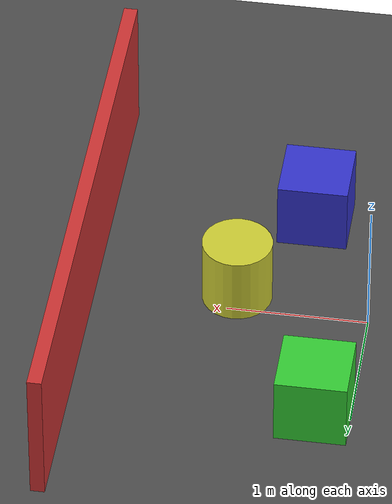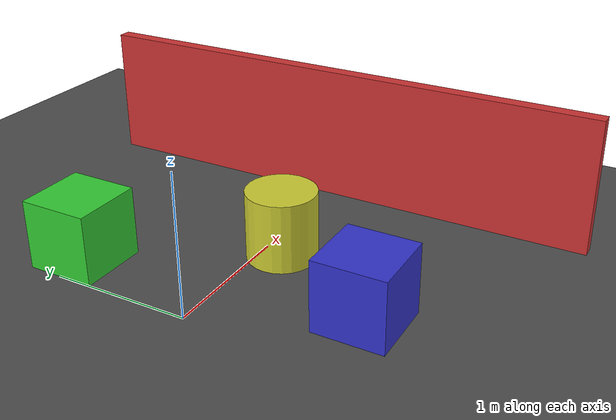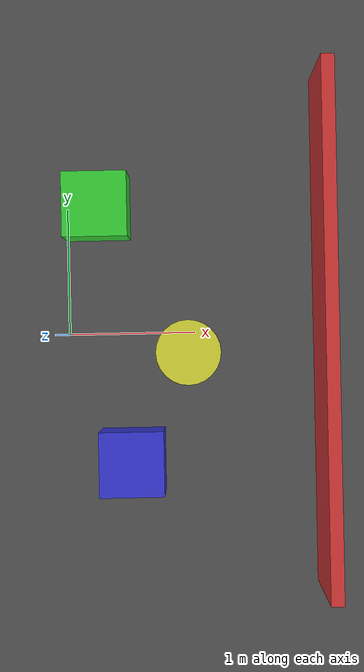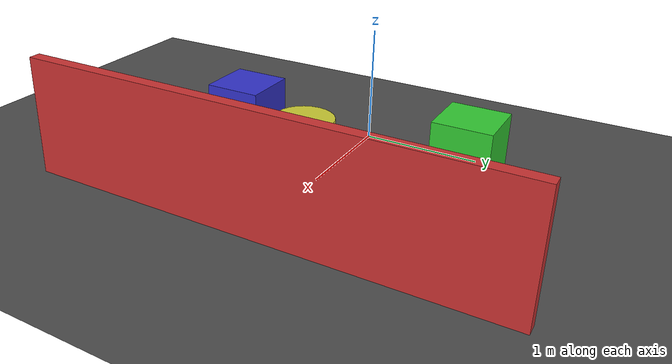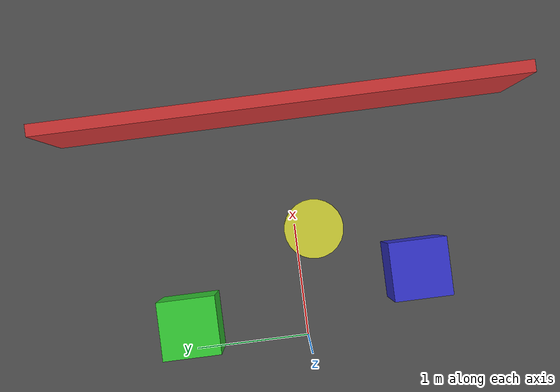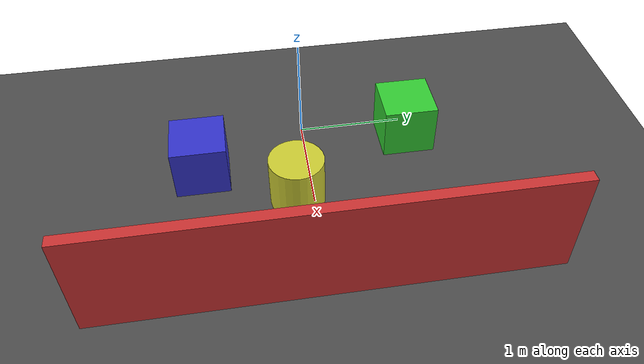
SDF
<?xml version="1.0" ?>
<sdf version="1.9">
  <world name="obstacle_world">

    <!-- Environment -->
    <light type="directional" name="sun">
      <cast_shadows>true</cast_shadows>
      <pose>0 0 10 0 0 0</pose>
      <diffuse>0.8 0.8 0.8 1</diffuse>
      <specular>0.2 0.2 0.2 1</specular>
      <attenuation>
        <range>1000</range>
        <constant>0.9</constant>
        <linear>0.01</linear>
        <quadratic>0.001</quadratic>
      </attenuation>
      <direction>-0.5 0.1 -0.9</direction>
    </light>

    <!-- Ground plane -->
    <model name="ground_plane">
      <static>true</static>
      <link name="link">
        <collision name="collision">
          <geometry>
            <plane>
              <normal>0 0 1</normal>
              <size>20 20</size>
            </plane>
          </geometry>
          <surface>
            <friction>
              <ode>
                <mu>100</mu>
                <mu2>50</mu2>
              </ode>
            </friction>
          </surface>
        </collision>
        <visual name="visual">
          <geometry>
            <plane>
              <normal>0 0 1</normal>
              <size>20 20</size>
            </plane>
          </geometry>
          <material>
            <ambient>0.3 0.3 0.3 1</ambient>
            <diffuse>0.3 0.3 0.3 1</diffuse>
            <specular>0.3 0.3 0.3 1</specular>
          </material>
        </visual>
      </link>
    </model>

    <!-- Obstacle 1: Wall -->
    <model name="wall_1">
      <pose>2.0 0.0 0.5 0 0 0</pose>
      <static>true</static>
      <link name="link">
        <collision name="collision">
          <geometry>
            <box>
              <size>0.1 4.0 1.0</size>
            </box>
          </geometry>
        </collision>
        <visual name="visual">
          <geometry>
            <box>
              <size>0.1 4.0 1.0</size>
            </box>
          </geometry>
          <material>
            <ambient>0.8 0.2 0.2 1</ambient>
            <diffuse>0.8 0.2 0.2 1</diffuse>
            <specular>0.3 0.1 0.1 1</specular>
          </material>
        </visual>
      </link>
    </model>

    <!-- Obstacle 2: Box 1 -->
    <model name="box_1">
      <pose>0.25 1.0 0.25 0 0 0</pose>
      <static>true</static>
      <link name="link">
        <collision name="collision">
          <geometry>
            <box>
              <size>0.5 0.5 0.5</size>
            </box>
          </geometry>
        </collision>
        <visual name="visual">
          <geometry>
            <box>
              <size>0.5 0.5 0.5</size>
            </box>
          </geometry>
          <material>
            <ambient>0.2 0.8 0.2 1</ambient>
            <diffuse>0.2 0.8 0.2 1</diffuse>
            <specular>0.1 0.3 0.1 1</specular>
          </material>
        </visual>
      </link>
    </model>

    <!-- Obstacle 3: Box 2 -->
    <model name="box_2">
      <pose>0.5 -1.0 0.25 0 0 0</pose>
      <static>true</static>
      <link name="link">
        <collision name="collision">
          <geometry>
            <box>
              <size>0.5 0.5 0.5</size>
            </box>
          </geometry>
        </collision>
        <visual name="visual">
          <geometry>
            <box>
              <size>0.5 0.5 0.5</size>
            </box>
          </geometry>
          <material>
            <ambient>0.2 0.2 0.8 1</ambient>
            <diffuse>0.2 0.2 0.8 1</diffuse>
            <specular>0.1 0.1 0.3 1</specular>
          </material>
        </visual>
      </link>
    </model>

    <!-- Obstacle 4: Cylinder -->
    <model name="cylinder_1">
      <pose>0.95 -0.15 0.25 0 0 0</pose>
      <static>true</static>
      <link name="link">
        <collision name="collision">
          <geometry>
            <cylinder>
              <radius>0.25</radius>
              <length>0.5</length>
            </cylinder>
          </geometry>
        </collision>
        <visual name="visual">
          <geometry>
            <cylinder>
              <radius>0.25</radius>
              <length>0.5</length>
            </cylinder>
          </geometry>
          <material>
            <ambient>0.8 0.8 0.2 1</ambient>
            <diffuse>0.8 0.8 0.2 1</diffuse>
            <specular>0.3 0.3 0.1 1</specular>
          </material>
        </visual>
      </link>
    </model>

    <!-- Physics system -->
    <plugin
      filename="libignition-gazebo6-physics-system.so"
      name="ignition::gazebo::systems::Physics">
    </plugin>

    <!-- User commands system -->
    <plugin
      filename="libignition-gazebo6-user-commands-system.so"
      name="ignition::gazebo::systems::UserCommands">
    </plugin>

    <!-- Scene broadcaster -->
    <plugin
      filename="libignition-gazebo6-scene-broadcaster-system.so"
      name="ignition::gazebo::systems::SceneBroadcaster">
    </plugin>

    <!-- Sensors system - CRITICAL for laser scan data -->
    <plugin
      filename="libignition-gazebo6-sensors-system.so"
      name="ignition::gazebo::systems::Sensors">
      <render_engine>ogre</render_engine>
    </plugin>

    <!-- Physics -->
    <physics name="1ms" type="ignored">
      <max_step_size>0.001</max_step_size>
      <real_time_factor>1.0</real_time_factor>
    </physics>

    <!-- Gui -->
    <gui fullscreen="0">
      <camera name="user_camera">
        <pose>0.0 0.0 5.0 0.0 1.57 0.0</pose>
        <view_controller>orbit</view_controller>
        <projection_type>perspective</projection_type>
      </camera>
    </gui>

  </world>
</sdf>
